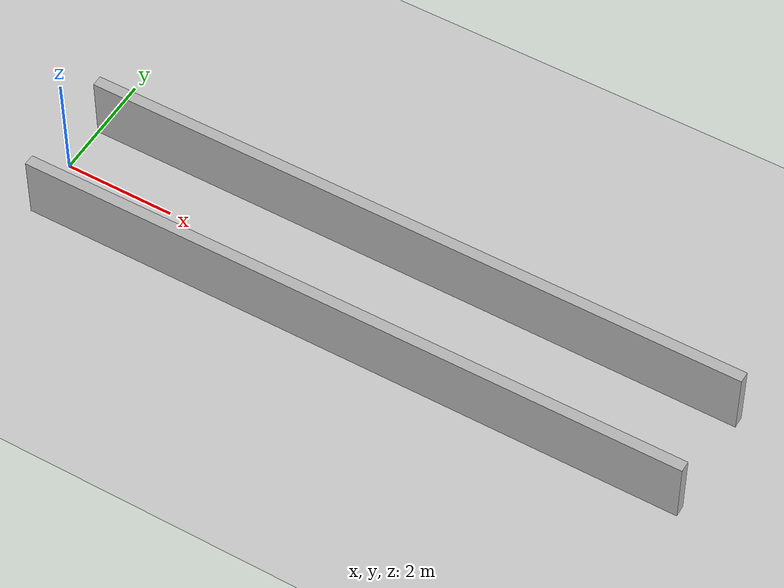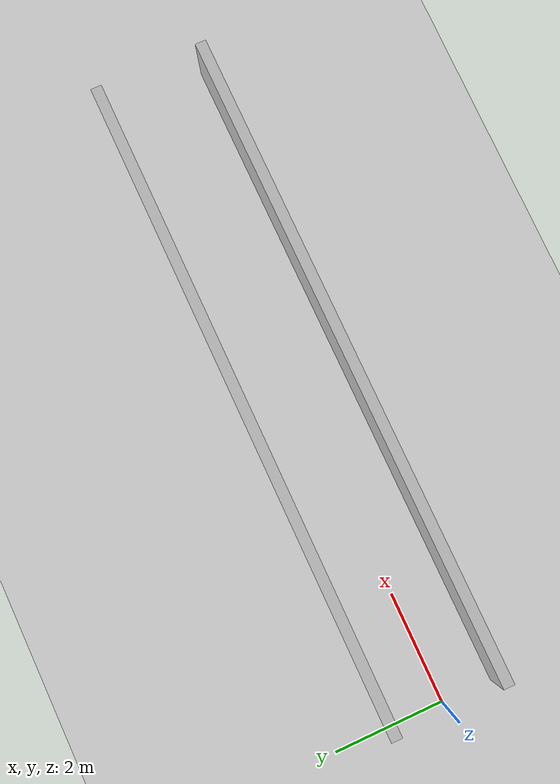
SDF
<?xml version="1.0"?>
<sdf version="1.6">
  <world name="v2-02-corridor-straight">
    <gravity>0 0 -9.81</gravity>
    <physics name="v2_deterministic" type="ode">
      <max_step_size>0.002</max_step_size>
      <real_time_update_rate>500</real_time_update_rate>
    </physics>
    <include>
      <uri>model://sun</uri>
    </include>
    <include>
      <uri>model://ground_plane</uri>
    </include>
    <model name="corridor-left-wall">
      <static>true</static>
      <pose>5.991246036 0.990656521 0.600000000 0 0 0.002304596</pose>
      <link name="link">
        <collision name="collision">
          <geometry>
            <box>
              <size>12.000000 0.200000 1.200000</size>
            </box>
          </geometry>
        </collision>
        <visual name="visual">
          <geometry>
            <box>
              <size>12.000000 0.200000 1.200000</size>
            </box>
          </geometry>
        </visual>
      </link>
    </model>
    <model name="corridor-right-wall">
      <static>true</static>
      <pose>5.985948080 -0.987070930 0.600000000 0 0 0.004284047</pose>
      <link name="link">
        <collision name="collision">
          <geometry>
            <box>
              <size>12.000000 0.200000 1.200000</size>
            </box>
          </geometry>
        </collision>
        <visual name="visual">
          <geometry>
            <box>
              <size>12.000000 0.200000 1.200000</size>
            </box>
          </geometry>
        </visual>
      </link>
    </model>
  </world>
</sdf>
